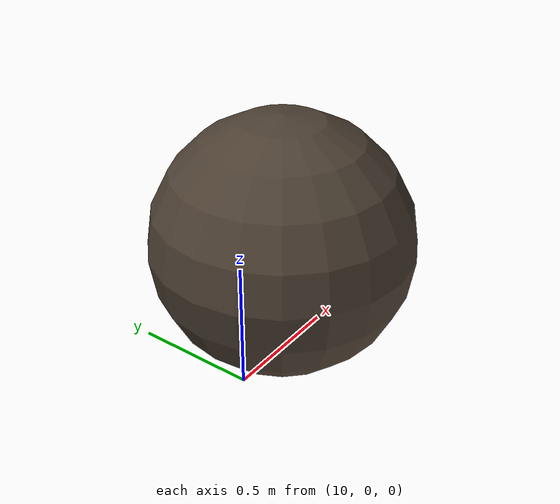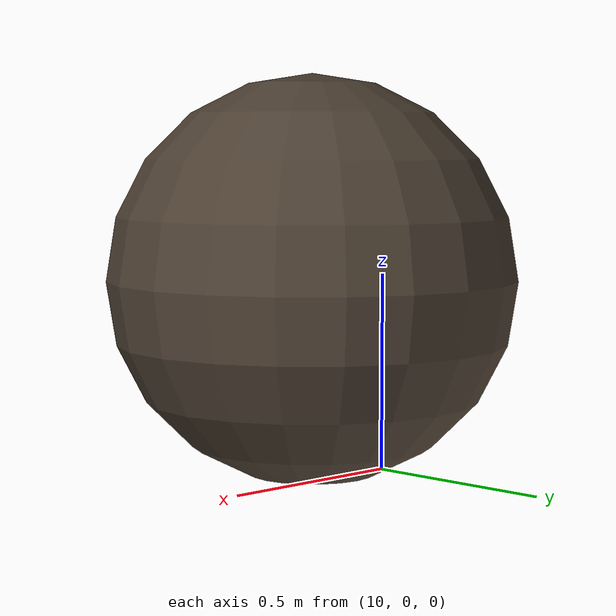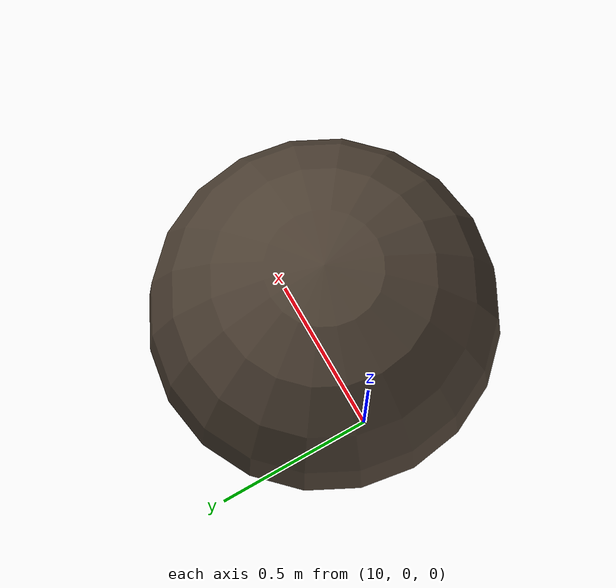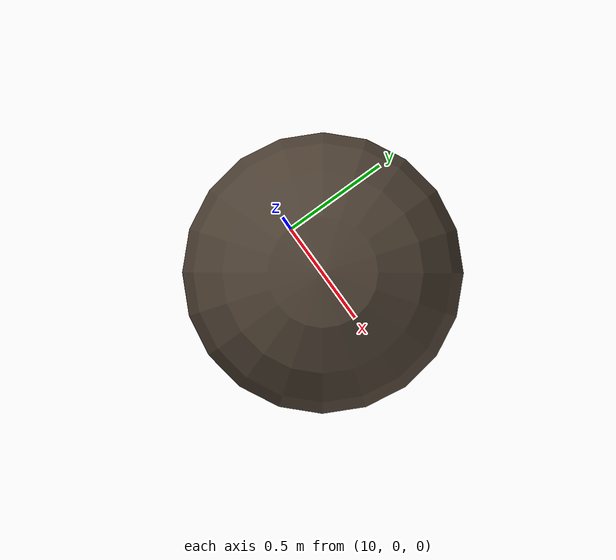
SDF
<sdf version='1.7'>
  <model name='boulder'>
    <static>true</static>
    <pose>10.25 0 0.5 0 0 0</pose>
    <link name='link'>
      <collision name='col'>
        <geometry><sphere><radius>0.5</radius></sphere></geometry>
      </collision>
      <visual name='vis'>
        <geometry><sphere><radius>0.5</radius></sphere></geometry>
        <material><ambient>0.3 0.25 0.2 1</ambient></material>
      </visual>
      <inertial><mass>1.0</mass></inertial>
    </link>
  </model>
</sdf>
